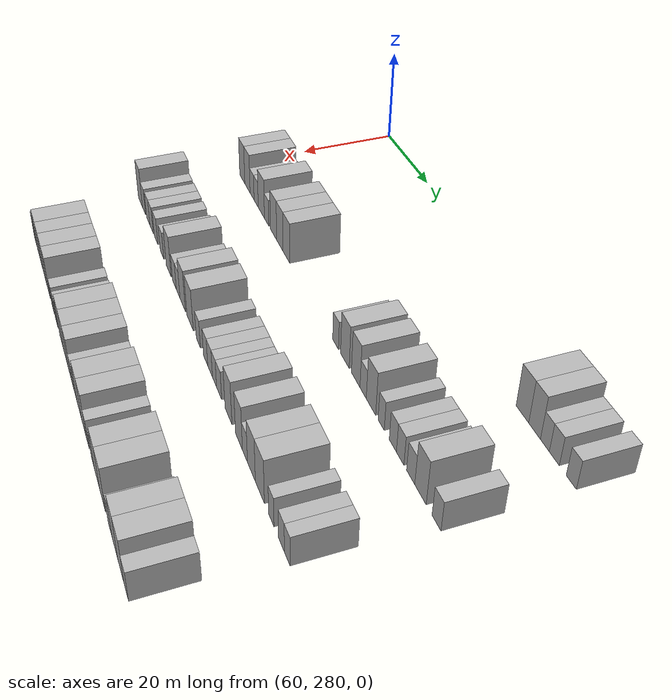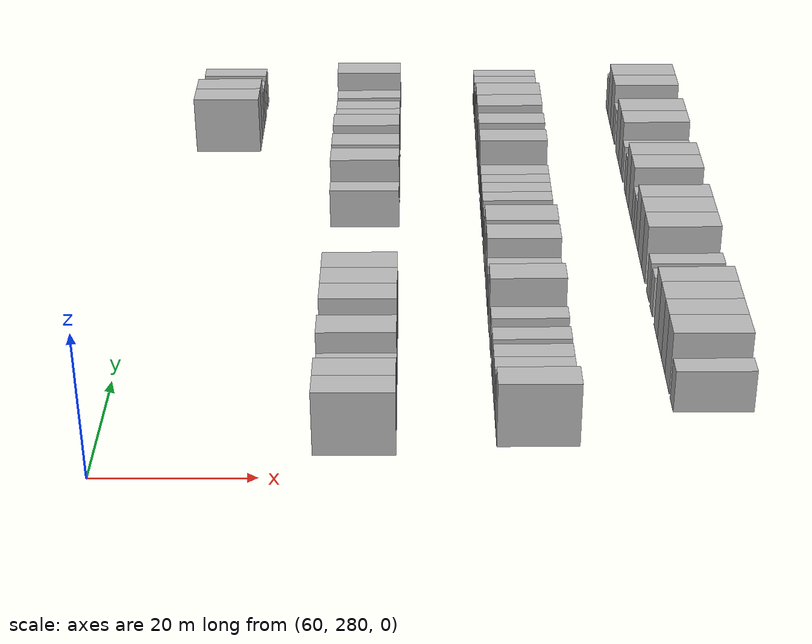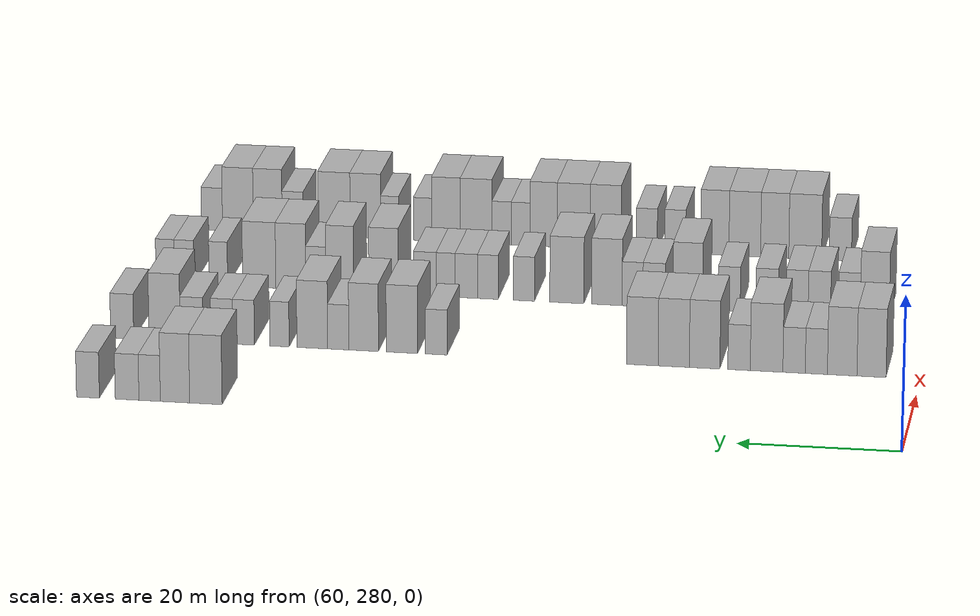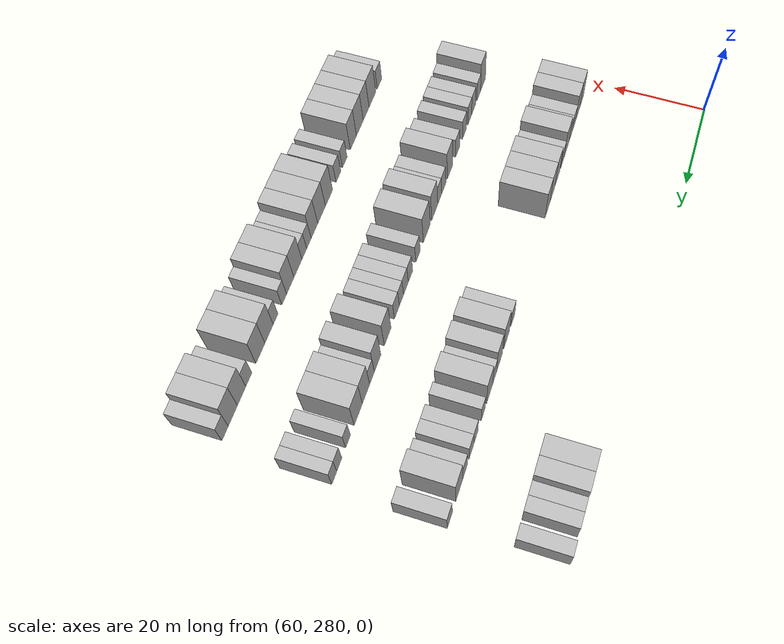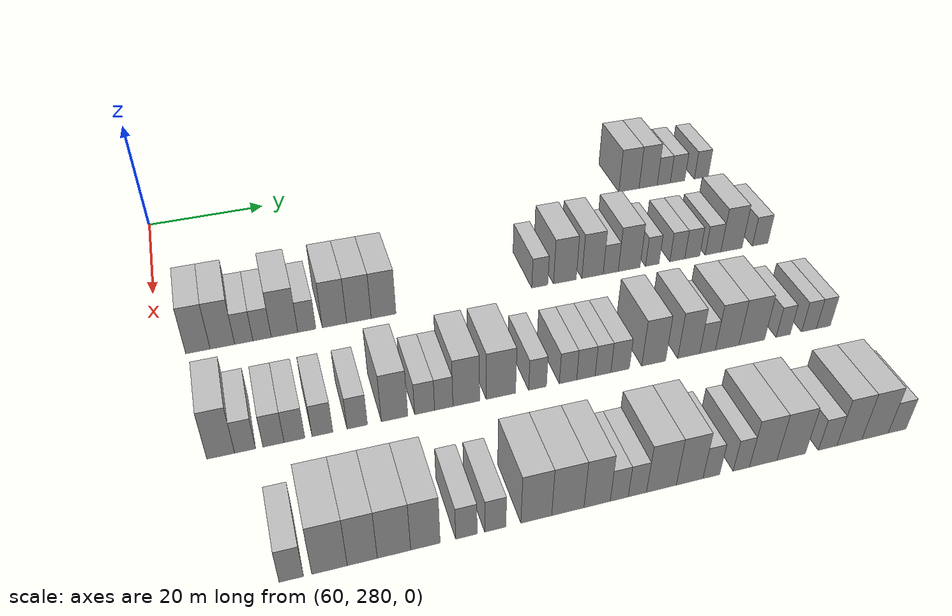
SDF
<sdf version="1.6">
 <world name="default">
  <model name="building_580">
   <static>1</static>
   <pose>69.0000 366.2772 0 0.000000 0.000000 0.000000</pose>
   <link name="link">
    <pose>0 0 4.50 0 0 0</pose>
    <collision name="collision"><geometry><box><size>10.0000 4.0760 9.0000</size></box></geometry></collision>
    <visual name="visual">
     <cast_shadows>0</cast_shadows>
     <geometry><box><size>10.0000 4.0760 9.0000</size></box></geometry>
     <material>
      <script>
       <uri>model://HANNAS_wall/materials/scripts</uri>
       <uri>model://HANNAS_wall/materials/textures</uri>
       <name>vrc/HANNAS_wall</name>
      </script>
     </material>
    </visual>
   </link>
  </model>
  <model name="building_581">
   <static>1</static>
   <pose>69.0000 370.1587 0 0.000000 0.000000 0.000000</pose>
   <link name="link">
    <pose>0 0 4.50 0 0 0</pose>
    <collision name="collision"><geometry><box><size>10.0000 3.6870 9.0000</size></box></geometry></collision>
    <visual name="visual">
     <cast_shadows>0</cast_shadows>
     <geometry><box><size>10.0000 3.6870 9.0000</size></box></geometry>
     <material>
      <script>
       <uri>model://HANNAS_wall/materials/scripts</uri>
       <uri>model://HANNAS_wall/materials/textures</uri>
       <name>vrc/HANNAS_wall</name>
      </script>
     </material>
    </visual>
   </link>
  </model>
  <model name="building_582">
   <static>1</static>
   <pose>69.0000 373.3470 0 0.000000 0.000000 0.000000</pose>
   <link name="link">
    <pose>0 0 3.00 0 0 0</pose>
    <collision name="collision"><geometry><box><size>10.0000 2.6898 6.0000</size></box></geometry></collision>
    <visual name="visual">
     <cast_shadows>0</cast_shadows>
     <geometry><box><size>10.0000 2.6898 6.0000</size></box></geometry>
     <material>
      <script>
       <uri>model://HANNAS_wall/materials/scripts</uri>
       <uri>model://HANNAS_wall/materials/textures</uri>
       <name>vrc/HANNAS_wall</name>
      </script>
     </material>
    </visual>
   </link>
  </model>
  <model name="building_583">
   <static>1</static>
   <pose>69.0000 376.1825 0 0.000000 0.000000 0.000000</pose>
   <link name="link">
    <pose>0 0 3.00 0 0 0</pose>
    <collision name="collision"><geometry><box><size>10.0000 2.9811 6.0000</size></box></geometry></collision>
    <visual name="visual">
     <cast_shadows>0</cast_shadows>
     <geometry><box><size>10.0000 2.9811 6.0000</size></box></geometry>
     <material>
      <script>
       <uri>model://HANNAS_wall/materials/scripts</uri>
       <uri>model://HANNAS_wall/materials/textures</uri>
       <name>vrc/HANNAS_wall</name>
      </script>
     </material>
    </visual>
   </link>
  </model>
  <model name="building_584">
   <static>1</static>
   <pose>69.0000 381.1152 0 0.000000 0.000000 0.000000</pose>
   <link name="link">
    <pose>0 0 3.00 0 0 0</pose>
    <collision name="collision"><geometry><box><size>10.0000 2.8843 6.0000</size></box></geometry></collision>
    <visual name="visual">
     <cast_shadows>0</cast_shadows>
     <geometry><box><size>10.0000 2.8843 6.0000</size></box></geometry>
     <material>
      <script>
       <uri>model://HANNAS_wall/materials/scripts</uri>
       <uri>model://HANNAS_wall/materials/textures</uri>
       <name>vrc/HANNAS_wall</name>
      </script>
     </material>
    </visual>
   </link>
  </model>
  <model name="building_750">
   <static>1</static>
   <pose>91.0000 286.1220 0 0.000000 0.000000 0.000000</pose>
   <link name="link">
    <pose>0 0 4.50 0 0 0</pose>
    <collision name="collision"><geometry><box><size>10.0000 3.6414 9.0000</size></box></geometry></collision>
    <visual name="visual">
     <cast_shadows>0</cast_shadows>
     <geometry><box><size>10.0000 3.6414 9.0000</size></box></geometry>
     <material>
      <script>
       <uri>model://HANNAS_wall/materials/scripts</uri>
       <uri>model://HANNAS_wall/materials/textures</uri>
       <name>vrc/HANNAS_wall</name>
      </script>
     </material>
    </visual>
   </link>
  </model>
  <model name="building_751">
   <static>1</static>
   <pose>91.0000 289.7912 0 0.000000 0.000000 0.000000</pose>
   <link name="link">
    <pose>0 0 4.50 0 0 0</pose>
    <collision name="collision"><geometry><box><size>10.0000 3.6968 9.0000</size></box></geometry></collision>
    <visual name="visual">
     <cast_shadows>0</cast_shadows>
     <geometry><box><size>10.0000 3.6968 9.0000</size></box></geometry>
     <material>
      <script>
       <uri>model://HANNAS_wall/materials/scripts</uri>
       <uri>model://HANNAS_wall/materials/textures</uri>
       <name>vrc/HANNAS_wall</name>
      </script>
     </material>
    </visual>
   </link>
  </model>
  <model name="building_752">
   <static>1</static>
   <pose>91.0000 293.0280 0 0.000000 0.000000 0.000000</pose>
   <link name="link">
    <pose>0 0 3.00 0 0 0</pose>
    <collision name="collision"><geometry><box><size>10.0000 2.7768 6.0000</size></box></geometry></collision>
    <visual name="visual">
     <cast_shadows>0</cast_shadows>
     <geometry><box><size>10.0000 2.7768 6.0000</size></box></geometry>
     <material>
      <script>
       <uri>model://HANNAS_wall/materials/scripts</uri>
       <uri>model://HANNAS_wall/materials/textures</uri>
       <name>vrc/HANNAS_wall</name>
      </script>
     </material>
    </visual>
   </link>
  </model>
  <model name="building_753">
   <static>1</static>
   <pose>91.0000 295.8197 0 0.000000 0.000000 0.000000</pose>
   <link name="link">
    <pose>0 0 3.00 0 0 0</pose>
    <collision name="collision"><geometry><box><size>10.0000 2.8067 6.0000</size></box></geometry></collision>
    <visual name="visual">
     <cast_shadows>0</cast_shadows>
     <geometry><box><size>10.0000 2.8067 6.0000</size></box></geometry>
     <material>
      <script>
       <uri>model://HANNAS_wall/materials/scripts</uri>
       <uri>model://HANNAS_wall/materials/textures</uri>
       <name>vrc/HANNAS_wall</name>
      </script>
     </material>
    </visual>
   </link>
  </model>
  <model name="building_754">
   <static>1</static>
   <pose>91.0000 299.2726 0 0.000000 0.000000 0.000000</pose>
   <link name="link">
    <pose>0 0 4.50 0 0 0</pose>
    <collision name="collision"><geometry><box><size>10.0000 4.0991 9.0000</size></box></geometry></collision>
    <visual name="visual">
     <cast_shadows>0</cast_shadows>
     <geometry><box><size>10.0000 4.0991 9.0000</size></box></geometry>
     <material>
      <script>
       <uri>model://HANNAS_wall/materials/scripts</uri>
       <uri>model://HANNAS_wall/materials/textures</uri>
       <name>vrc/HANNAS_wall</name>
      </script>
     </material>
    </visual>
   </link>
  </model>
  <model name="building_755">
   <static>1</static>
   <pose>91.0000 302.7346 0 0.000000 0.000000 0.000000</pose>
   <link name="link">
    <pose>0 0 3.00 0 0 0</pose>
    <collision name="collision"><geometry><box><size>10.0000 2.8249 6.0000</size></box></geometry></collision>
    <visual name="visual">
     <cast_shadows>0</cast_shadows>
     <geometry><box><size>10.0000 2.8249 6.0000</size></box></geometry>
     <material>
      <script>
       <uri>model://HANNAS_wall/materials/scripts</uri>
       <uri>model://HANNAS_wall/materials/textures</uri>
       <name>vrc/HANNAS_wall</name>
      </script>
     </material>
    </visual>
   </link>
  </model>
  <model name="building_756">
   <static>1</static>
   <pose>91.0000 307.0704 0 0.000000 0.000000 0.000000</pose>
   <link name="link">
    <pose>0 0 4.50 0 0 0</pose>
    <collision name="collision"><geometry><box><size>10.0000 3.8467 9.0000</size></box></geometry></collision>
    <visual name="visual">
     <cast_shadows>0</cast_shadows>
     <geometry><box><size>10.0000 3.8467 9.0000</size></box></geometry>
     <material>
      <script>
       <uri>model://HANNAS_wall/materials/scripts</uri>
       <uri>model://HANNAS_wall/materials/textures</uri>
       <name>vrc/HANNAS_wall</name>
      </script>
     </material>
    </visual>
   </link>
  </model>
  <model name="building_757">
   <static>1</static>
   <pose>91.0000 310.9632 0 0.000000 0.000000 0.000000</pose>
   <link name="link">
    <pose>0 0 4.50 0 0 0</pose>
    <collision name="collision"><geometry><box><size>10.0000 3.9389 9.0000</size></box></geometry></collision>
    <visual name="visual">
     <cast_shadows>0</cast_shadows>
     <geometry><box><size>10.0000 3.9389 9.0000</size></box></geometry>
     <material>
      <script>
       <uri>model://HANNAS_wall/materials/scripts</uri>
       <uri>model://HANNAS_wall/materials/textures</uri>
       <name>vrc/HANNAS_wall</name>
      </script>
     </material>
    </visual>
   </link>
  </model>
  <model name="building_758">
   <static>1</static>
   <pose>91.0000 314.9279 0 0.000000 0.000000 0.000000</pose>
   <link name="link">
    <pose>0 0 4.50 0 0 0</pose>
    <collision name="collision"><geometry><box><size>10.0000 3.9906 9.0000</size></box></geometry></collision>
    <visual name="visual">
     <cast_shadows>0</cast_shadows>
     <geometry><box><size>10.0000 3.9906 9.0000</size></box></geometry>
     <material>
      <script>
       <uri>model://HANNAS_wall/materials/scripts</uri>
       <uri>model://HANNAS_wall/materials/textures</uri>
       <name>vrc/HANNAS_wall</name>
      </script>
     </material>
    </visual>
   </link>
  </model>
  <model name="building_759">
   <static>1</static>
   <pose>91.0000 341.0937 0 0.000000 0.000000 0.000000</pose>
   <link name="link">
    <pose>0 0 3.00 0 0 0</pose>
    <collision name="collision"><geometry><box><size>10.0000 2.7803 6.0000</size></box></geometry></collision>
    <visual name="visual">
     <cast_shadows>0</cast_shadows>
     <geometry><box><size>10.0000 2.7803 6.0000</size></box></geometry>
     <material>
      <script>
       <uri>model://HANNAS_wall/materials/scripts</uri>
       <uri>model://HANNAS_wall/materials/textures</uri>
       <name>vrc/HANNAS_wall</name>
      </script>
     </material>
    </visual>
   </link>
  </model>
  <model name="building_760">
   <static>1</static>
   <pose>91.0000 345.4818 0 0.000000 0.000000 0.000000</pose>
   <link name="link">
    <pose>0 0 4.50 0 0 0</pose>
    <collision name="collision"><geometry><box><size>10.0000 3.9960 9.0000</size></box></geometry></collision>
    <visual name="visual">
     <cast_shadows>0</cast_shadows>
     <geometry><box><size>10.0000 3.9960 9.0000</size></box></geometry>
     <material>
      <script>
       <uri>model://HANNAS_wall/materials/scripts</uri>
       <uri>model://HANNAS_wall/materials/textures</uri>
       <name>vrc/HANNAS_wall</name>
      </script>
     </material>
    </visual>
   </link>
  </model>
  <model name="building_761">
   <static>1</static>
   <pose>91.0000 350.3775 0 0.000000 0.000000 0.000000</pose>
   <link name="link">
    <pose>0 0 4.50 0 0 0</pose>
    <collision name="collision"><geometry><box><size>10.0000 3.7954 9.0000</size></box></geometry></collision>
    <visual name="visual">
     <cast_shadows>0</cast_shadows>
     <geometry><box><size>10.0000 3.7954 9.0000</size></box></geometry>
     <material>
      <script>
       <uri>model://HANNAS_wall/materials/scripts</uri>
       <uri>model://HANNAS_wall/materials/textures</uri>
       <name>vrc/HANNAS_wall</name>
      </script>
     </material>
    </visual>
   </link>
  </model>
  <model name="building_762">
   <static>1</static>
   <pose>91.0000 353.6324 0 0.000000 0.000000 0.000000</pose>
   <link name="link">
    <pose>0 0 3.00 0 0 0</pose>
    <collision name="collision"><geometry><box><size>10.0000 2.7145 6.0000</size></box></geometry></collision>
    <visual name="visual">
     <cast_shadows>0</cast_shadows>
     <geometry><box><size>10.0000 2.7145 6.0000</size></box></geometry>
     <material>
      <script>
       <uri>model://HANNAS_wall/materials/scripts</uri>
       <uri>model://HANNAS_wall/materials/textures</uri>
       <name>vrc/HANNAS_wall</name>
      </script>
     </material>
    </visual>
   </link>
  </model>
  <model name="building_763">
   <static>1</static>
   <pose>91.0000 356.9633 0 0.000000 0.000000 0.000000</pose>
   <link name="link">
    <pose>0 0 4.50 0 0 0</pose>
    <collision name="collision"><geometry><box><size>10.0000 3.9473 9.0000</size></box></geometry></collision>
    <visual name="visual">
     <cast_shadows>0</cast_shadows>
     <geometry><box><size>10.0000 3.9473 9.0000</size></box></geometry>
     <material>
      <script>
       <uri>model://HANNAS_wall/materials/scripts</uri>
       <uri>model://HANNAS_wall/materials/textures</uri>
       <name>vrc/HANNAS_wall</name>
      </script>
     </material>
    </visual>
   </link>
  </model>
  <model name="building_764">
   <static>1</static>
   <pose>91.0000 361.1721 0 0.000000 0.000000 0.000000</pose>
   <link name="link">
    <pose>0 0 3.00 0 0 0</pose>
    <collision name="collision"><geometry><box><size>10.0000 2.4701 6.0000</size></box></geometry></collision>
    <visual name="visual">
     <cast_shadows>0</cast_shadows>
     <geometry><box><size>10.0000 2.4701 6.0000</size></box></geometry>
     <material>
      <script>
       <uri>model://HANNAS_wall/materials/scripts</uri>
       <uri>model://HANNAS_wall/materials/textures</uri>
       <name>vrc/HANNAS_wall</name>
      </script>
     </material>
    </visual>
   </link>
  </model>
  <model name="building_765">
   <static>1</static>
   <pose>91.0000 365.7931 0 0.000000 0.000000 0.000000</pose>
   <link name="link">
    <pose>0 0 3.00 0 0 0</pose>
    <collision name="collision"><geometry><box><size>10.0000 2.7720 6.0000</size></box></geometry></collision>
    <visual name="visual">
     <cast_shadows>0</cast_shadows>
     <geometry><box><size>10.0000 2.7720 6.0000</size></box></geometry>
     <material>
      <script>
       <uri>model://HANNAS_wall/materials/scripts</uri>
       <uri>model://HANNAS_wall/materials/textures</uri>
       <name>vrc/HANNAS_wall</name>
      </script>
     </material>
    </visual>
   </link>
  </model>
  <model name="building_766">
   <static>1</static>
   <pose>91.0000 368.5894 0 0.000000 0.000000 0.000000</pose>
   <link name="link">
    <pose>0 0 3.00 0 0 0</pose>
    <collision name="collision"><geometry><box><size>10.0000 2.8205 6.0000</size></box></geometry></collision>
    <visual name="visual">
     <cast_shadows>0</cast_shadows>
     <geometry><box><size>10.0000 2.8205 6.0000</size></box></geometry>
     <material>
      <script>
       <uri>model://HANNAS_wall/materials/scripts</uri>
       <uri>model://HANNAS_wall/materials/textures</uri>
       <name>vrc/HANNAS_wall</name>
      </script>
     </material>
    </visual>
   </link>
  </model>
  <model name="building_767">
   <static>1</static>
   <pose>91.0000 372.4851 0 0.000000 0.000000 0.000000</pose>
   <link name="link">
    <pose>0 0 3.00 0 0 0</pose>
    <collision name="collision"><geometry><box><size>10.0000 2.9709 6.0000</size></box></geometry></collision>
    <visual name="visual">
     <cast_shadows>0</cast_shadows>
     <geometry><box><size>10.0000 2.9709 6.0000</size></box></geometry>
     <material>
      <script>
       <uri>model://HANNAS_wall/materials/scripts</uri>
       <uri>model://HANNAS_wall/materials/textures</uri>
       <name>vrc/HANNAS_wall</name>
      </script>
     </material>
    </visual>
   </link>
  </model>
  <model name="building_768">
   <static>1</static>
   <pose>91.0000 375.9831 0 0.000000 0.000000 0.000000</pose>
   <link name="link">
    <pose>0 0 4.50 0 0 0</pose>
    <collision name="collision"><geometry><box><size>10.0000 4.0251 9.0000</size></box></geometry></collision>
    <visual name="visual">
     <cast_shadows>0</cast_shadows>
     <geometry><box><size>10.0000 4.0251 9.0000</size></box></geometry>
     <material>
      <script>
       <uri>model://HANNAS_wall/materials/scripts</uri>
       <uri>model://HANNAS_wall/materials/textures</uri>
       <name>vrc/HANNAS_wall</name>
      </script>
     </material>
    </visual>
   </link>
  </model>
  <model name="building_769">
   <static>1</static>
   <pose>91.0000 381.4887 0 0.000000 0.000000 0.000000</pose>
   <link name="link">
    <pose>0 0 3.00 0 0 0</pose>
    <collision name="collision"><geometry><box><size>10.0000 2.9861 6.0000</size></box></geometry></collision>
    <visual name="visual">
     <cast_shadows>0</cast_shadows>
     <geometry><box><size>10.0000 2.9861 6.0000</size></box></geometry>
     <material>
      <script>
       <uri>model://HANNAS_wall/materials/scripts</uri>
       <uri>model://HANNAS_wall/materials/textures</uri>
       <name>vrc/HANNAS_wall</name>
      </script>
     </material>
    </visual>
   </link>
  </model>
  <model name="building_928">
   <static>1</static>
   <pose>113.0000 287.7310 0 0.000000 0.000000 0.000000</pose>
   <link name="link">
    <pose>0 0 4.50 0 0 0</pose>
    <collision name="collision"><geometry><box><size>10.0000 3.7162 9.0000</size></box></geometry></collision>
    <visual name="visual">
     <cast_shadows>0</cast_shadows>
     <geometry><box><size>10.0000 3.7162 9.0000</size></box></geometry>
     <material>
      <script>
       <uri>model://HANNAS_wall/materials/scripts</uri>
       <uri>model://HANNAS_wall/materials/textures</uri>
       <name>vrc/HANNAS_wall</name>
      </script>
     </material>
    </visual>
   </link>
  </model>
  <model name="building_929">
   <static>1</static>
   <pose>113.0000 291.0028 0 0.000000 0.000000 0.000000</pose>
   <link name="link">
    <pose>0 0 3.00 0 0 0</pose>
    <collision name="collision"><geometry><box><size>10.0000 2.8272 6.0000</size></box></geometry></collision>
    <visual name="visual">
     <cast_shadows>0</cast_shadows>
     <geometry><box><size>10.0000 2.8272 6.0000</size></box></geometry>
     <material>
      <script>
       <uri>model://HANNAS_wall/materials/scripts</uri>
       <uri>model://HANNAS_wall/materials/textures</uri>
       <name>vrc/HANNAS_wall</name>
      </script>
     </material>
    </visual>
   </link>
  </model>
  <model name="building_930">
   <static>1</static>
   <pose>113.0000 294.8592 0 0.000000 0.000000 0.000000</pose>
   <link name="link">
    <pose>0 0 3.00 0 0 0</pose>
    <collision name="collision"><geometry><box><size>10.0000 2.8858 6.0000</size></box></geometry></collision>
    <visual name="visual">
     <cast_shadows>0</cast_shadows>
     <geometry><box><size>10.0000 2.8858 6.0000</size></box></geometry>
     <material>
      <script>
       <uri>model://HANNAS_wall/materials/scripts</uri>
       <uri>model://HANNAS_wall/materials/textures</uri>
       <name>vrc/HANNAS_wall</name>
      </script>
     </material>
    </visual>
   </link>
  </model>
  <model name="building_931">
   <static>1</static>
   <pose>113.0000 297.7384 0 0.000000 0.000000 0.000000</pose>
   <link name="link">
    <pose>0 0 3.00 0 0 0</pose>
    <collision name="collision"><geometry><box><size>10.0000 2.8725 6.0000</size></box></geometry></collision>
    <visual name="visual">
     <cast_shadows>0</cast_shadows>
     <geometry><box><size>10.0000 2.8725 6.0000</size></box></geometry>
     <material>
      <script>
       <uri>model://HANNAS_wall/materials/scripts</uri>
       <uri>model://HANNAS_wall/materials/textures</uri>
       <name>vrc/HANNAS_wall</name>
      </script>
     </material>
    </visual>
   </link>
  </model>
  <model name="building_932">
   <static>1</static>
   <pose>113.0000 301.6266 0 0.000000 0.000000 0.000000</pose>
   <link name="link">
    <pose>0 0 3.00 0 0 0</pose>
    <collision name="collision"><geometry><box><size>10.0000 2.9038 6.0000</size></box></geometry></collision>
    <visual name="visual">
     <cast_shadows>0</cast_shadows>
     <geometry><box><size>10.0000 2.9038 6.0000</size></box></geometry>
     <material>
      <script>
       <uri>model://HANNAS_wall/materials/scripts</uri>
       <uri>model://HANNAS_wall/materials/textures</uri>
       <name>vrc/HANNAS_wall</name>
      </script>
     </material>
    </visual>
   </link>
  </model>
  <model name="building_933">
   <static>1</static>
   <pose>113.0000 306.5180 0 0.000000 0.000000 0.000000</pose>
   <link name="link">
    <pose>0 0 3.00 0 0 0</pose>
    <collision name="collision"><geometry><box><size>10.0000 2.8791 6.0000</size></box></geometry></collision>
    <visual name="visual">
     <cast_shadows>0</cast_shadows>
     <geometry><box><size>10.0000 2.8791 6.0000</size></box></geometry>
     <material>
      <script>
       <uri>model://HANNAS_wall/materials/scripts</uri>
       <uri>model://HANNAS_wall/materials/textures</uri>
       <name>vrc/HANNAS_wall</name>
      </script>
     </material>
    </visual>
   </link>
  </model>
  <model name="building_934">
   <static>1</static>
   <pose>113.0000 311.8650 0 0.000000 0.000000 0.000000</pose>
   <link name="link">
    <pose>0 0 4.50 0 0 0</pose>
    <collision name="collision"><geometry><box><size>10.0000 3.8147 9.0000</size></box></geometry></collision>
    <visual name="visual">
     <cast_shadows>0</cast_shadows>
     <geometry><box><size>10.0000 3.8147 9.0000</size></box></geometry>
     <material>
      <script>
       <uri>model://HANNAS_wall/materials/scripts</uri>
       <uri>model://HANNAS_wall/materials/textures</uri>
       <name>vrc/HANNAS_wall</name>
      </script>
     </material>
    </visual>
   </link>
  </model>
  <model name="building_935">
   <static>1</static>
   <pose>113.0000 316.2283 0 0.000000 0.000000 0.000000</pose>
   <link name="link">
    <pose>0 0 3.00 0 0 0</pose>
    <collision name="collision"><geometry><box><size>10.0000 2.9121 6.0000</size></box></geometry></collision>
    <visual name="visual">
     <cast_shadows>0</cast_shadows>
     <geometry><box><size>10.0000 2.9121 6.0000</size></box></geometry>
     <material>
      <script>
       <uri>model://HANNAS_wall/materials/scripts</uri>
       <uri>model://HANNAS_wall/materials/textures</uri>
       <name>vrc/HANNAS_wall</name>
      </script>
     </material>
    </visual>
   </link>
  </model>
  <model name="building_936">
   <static>1</static>
   <pose>113.0000 319.0325 0 0.000000 0.000000 0.000000</pose>
   <link name="link">
    <pose>0 0 3.00 0 0 0</pose>
    <collision name="collision"><geometry><box><size>10.0000 2.6962 6.0000</size></box></geometry></collision>
    <visual name="visual">
     <cast_shadows>0</cast_shadows>
     <geometry><box><size>10.0000 2.6962 6.0000</size></box></geometry>
     <material>
      <script>
       <uri>model://HANNAS_wall/materials/scripts</uri>
       <uri>model://HANNAS_wall/materials/textures</uri>
       <name>vrc/HANNAS_wall</name>
      </script>
     </material>
    </visual>
   </link>
  </model>
  <model name="building_937">
   <static>1</static>
   <pose>113.0000 322.3652 0 0.000000 0.000000 0.000000</pose>
   <link name="link">
    <pose>0 0 4.50 0 0 0</pose>
    <collision name="collision"><geometry><box><size>10.0000 3.9692 9.0000</size></box></geometry></collision>
    <visual name="visual">
     <cast_shadows>0</cast_shadows>
     <geometry><box><size>10.0000 3.9692 9.0000</size></box></geometry>
     <material>
      <script>
       <uri>model://HANNAS_wall/materials/scripts</uri>
       <uri>model://HANNAS_wall/materials/textures</uri>
       <name>vrc/HANNAS_wall</name>
      </script>
     </material>
    </visual>
   </link>
  </model>
  <model name="building_938">
   <static>1</static>
   <pose>113.0000 327.5741 0 0.000000 0.000000 0.000000</pose>
   <link name="link">
    <pose>0 0 4.50 0 0 0</pose>
    <collision name="collision"><geometry><box><size>10.0000 4.4486 9.0000</size></box></geometry></collision>
    <visual name="visual">
     <cast_shadows>0</cast_shadows>
     <geometry><box><size>10.0000 4.4486 9.0000</size></box></geometry>
     <material>
      <script>
       <uri>model://HANNAS_wall/materials/scripts</uri>
       <uri>model://HANNAS_wall/materials/textures</uri>
       <name>vrc/HANNAS_wall</name>
      </script>
     </material>
    </visual>
   </link>
  </model>
  <model name="building_939">
   <static>1</static>
   <pose>113.0000 333.1717 0 0.000000 0.000000 0.000000</pose>
   <link name="link">
    <pose>0 0 3.00 0 0 0</pose>
    <collision name="collision"><geometry><box><size>10.0000 2.7464 6.0000</size></box></geometry></collision>
    <visual name="visual">
     <cast_shadows>0</cast_shadows>
     <geometry><box><size>10.0000 2.7464 6.0000</size></box></geometry>
     <material>
      <script>
       <uri>model://HANNAS_wall/materials/scripts</uri>
       <uri>model://HANNAS_wall/materials/textures</uri>
       <name>vrc/HANNAS_wall</name>
      </script>
     </material>
    </visual>
   </link>
  </model>
  <model name="building_940">
   <static>1</static>
   <pose>113.0000 337.9010 0 0.000000 0.000000 0.000000</pose>
   <link name="link">
    <pose>0 0 3.00 0 0 0</pose>
    <collision name="collision"><geometry><box><size>10.0000 2.7122 6.0000</size></box></geometry></collision>
    <visual name="visual">
     <cast_shadows>0</cast_shadows>
     <geometry><box><size>10.0000 2.7122 6.0000</size></box></geometry>
     <material>
      <script>
       <uri>model://HANNAS_wall/materials/scripts</uri>
       <uri>model://HANNAS_wall/materials/textures</uri>
       <name>vrc/HANNAS_wall</name>
      </script>
     </material>
    </visual>
   </link>
  </model>
  <model name="building_941">
   <static>1</static>
   <pose>113.0000 340.7173 0 0.000000 0.000000 0.000000</pose>
   <link name="link">
    <pose>0 0 3.00 0 0 0</pose>
    <collision name="collision"><geometry><box><size>10.0000 2.9204 6.0000</size></box></geometry></collision>
    <visual name="visual">
     <cast_shadows>0</cast_shadows>
     <geometry><box><size>10.0000 2.9204 6.0000</size></box></geometry>
     <material>
      <script>
       <uri>model://HANNAS_wall/materials/scripts</uri>
       <uri>model://HANNAS_wall/materials/textures</uri>
       <name>vrc/HANNAS_wall</name>
      </script>
     </material>
    </visual>
   </link>
  </model>
  <model name="building_942">
   <static>1</static>
   <pose>113.0000 343.4243 0 0.000000 0.000000 0.000000</pose>
   <link name="link">
    <pose>0 0 3.00 0 0 0</pose>
    <collision name="collision"><geometry><box><size>10.0000 2.4936 6.0000</size></box></geometry></collision>
    <visual name="visual">
     <cast_shadows>0</cast_shadows>
     <geometry><box><size>10.0000 2.4936 6.0000</size></box></geometry>
     <material>
      <script>
       <uri>model://HANNAS_wall/materials/scripts</uri>
       <uri>model://HANNAS_wall/materials/textures</uri>
       <name>vrc/HANNAS_wall</name>
      </script>
     </material>
    </visual>
   </link>
  </model>
  <model name="building_943">
   <static>1</static>
   <pose>113.0000 346.1548 0 0.000000 0.000000 0.000000</pose>
   <link name="link">
    <pose>0 0 3.00 0 0 0</pose>
    <collision name="collision"><geometry><box><size>10.0000 2.9674 6.0000</size></box></geometry></collision>
    <visual name="visual">
     <cast_shadows>0</cast_shadows>
     <geometry><box><size>10.0000 2.9674 6.0000</size></box></geometry>
     <material>
      <script>
       <uri>model://HANNAS_wall/materials/scripts</uri>
       <uri>model://HANNAS_wall/materials/textures</uri>
       <name>vrc/HANNAS_wall</name>
      </script>
     </material>
    </visual>
   </link>
  </model>
  <model name="building_944">
   <static>1</static>
   <pose>113.0000 351.5796 0 0.000000 0.000000 0.000000</pose>
   <link name="link">
    <pose>0 0 4.50 0 0 0</pose>
    <collision name="collision"><geometry><box><size>10.0000 3.8823 9.0000</size></box></geometry></collision>
    <visual name="visual">
     <cast_shadows>0</cast_shadows>
     <geometry><box><size>10.0000 3.8823 9.0000</size></box></geometry>
     <material>
      <script>
       <uri>model://HANNAS_wall/materials/scripts</uri>
       <uri>model://HANNAS_wall/materials/textures</uri>
       <name>vrc/HANNAS_wall</name>
      </script>
     </material>
    </visual>
   </link>
  </model>
  <model name="building_945">
   <static>1</static>
   <pose>113.0000 357.3502 0 0.000000 0.000000 0.000000</pose>
   <link name="link">
    <pose>0 0 4.50 0 0 0</pose>
    <collision name="collision"><geometry><box><size>10.0000 3.6589 9.0000</size></box></geometry></collision>
    <visual name="visual">
     <cast_shadows>0</cast_shadows>
     <geometry><box><size>10.0000 3.6589 9.0000</size></box></geometry>
     <material>
      <script>
       <uri>model://HANNAS_wall/materials/scripts</uri>
       <uri>model://HANNAS_wall/materials/textures</uri>
       <name>vrc/HANNAS_wall</name>
      </script>
     </material>
    </visual>
   </link>
  </model>
  <model name="building_946">
   <static>1</static>
   <pose>113.0000 360.4922 0 0.000000 0.000000 0.000000</pose>
   <link name="link">
    <pose>0 0 3.00 0 0 0</pose>
    <collision name="collision"><geometry><box><size>10.0000 2.6251 6.0000</size></box></geometry></collision>
    <visual name="visual">
     <cast_shadows>0</cast_shadows>
     <geometry><box><size>10.0000 2.6251 6.0000</size></box></geometry>
     <material>
      <script>
       <uri>model://HANNAS_wall/materials/scripts</uri>
       <uri>model://HANNAS_wall/materials/textures</uri>
       <name>vrc/HANNAS_wall</name>
      </script>
     </material>
    </visual>
   </link>
  </model>
  <model name="building_947">
   <static>1</static>
   <pose>113.0000 363.7940 0 0.000000 0.000000 0.000000</pose>
   <link name="link">
    <pose>0 0 4.50 0 0 0</pose>
    <collision name="collision"><geometry><box><size>10.0000 3.9786 9.0000</size></box></geometry></collision>
    <visual name="visual">
     <cast_shadows>0</cast_shadows>
     <geometry><box><size>10.0000 3.9786 9.0000</size></box></geometry>
     <material>
      <script>
       <uri>model://HANNAS_wall/materials/scripts</uri>
       <uri>model://HANNAS_wall/materials/textures</uri>
       <name>vrc/HANNAS_wall</name>
      </script>
     </material>
    </visual>
   </link>
  </model>
  <model name="building_948">
   <static>1</static>
   <pose>113.0000 367.9736 0 0.000000 0.000000 0.000000</pose>
   <link name="link">
    <pose>0 0 4.50 0 0 0</pose>
    <collision name="collision"><geometry><box><size>10.0000 4.3806 9.0000</size></box></geometry></collision>
    <visual name="visual">
     <cast_shadows>0</cast_shadows>
     <geometry><box><size>10.0000 4.3806 9.0000</size></box></geometry>
     <material>
      <script>
       <uri>model://HANNAS_wall/materials/scripts</uri>
       <uri>model://HANNAS_wall/materials/textures</uri>
       <name>vrc/HANNAS_wall</name>
      </script>
     </material>
    </visual>
   </link>
  </model>
  <model name="building_949">
   <static>1</static>
   <pose>113.0000 373.3889 0 0.000000 0.000000 0.000000</pose>
   <link name="link">
    <pose>0 0 3.00 0 0 0</pose>
    <collision name="collision"><geometry><box><size>10.0000 2.4499 6.0000</size></box></geometry></collision>
    <visual name="visual">
     <cast_shadows>0</cast_shadows>
     <geometry><box><size>10.0000 2.4499 6.0000</size></box></geometry>
     <material>
      <script>
       <uri>model://HANNAS_wall/materials/scripts</uri>
       <uri>model://HANNAS_wall/materials/textures</uri>
       <name>vrc/HANNAS_wall</name>
      </script>
     </material>
    </visual>
   </link>
  </model>
  <model name="building_950">
   <static>1</static>
   <pose>113.0000 377.9142 0 0.000000 0.000000 0.000000</pose>
   <link name="link">
    <pose>0 0 3.00 0 0 0</pose>
    <collision name="collision"><geometry><box><size>10.0000 2.6008 6.0000</size></box></geometry></collision>
    <visual name="visual">
     <cast_shadows>0</cast_shadows>
     <geometry><box><size>10.0000 2.6008 6.0000</size></box></geometry>
     <material>
      <script>
       <uri>model://HANNAS_wall/materials/scripts</uri>
       <uri>model://HANNAS_wall/materials/textures</uri>
       <name>vrc/HANNAS_wall</name>
      </script>
     </material>
    </visual>
   </link>
  </model>
  <model name="building_951">
   <static>1</static>
   <pose>113.0000 380.4420 0 0.000000 0.000000 0.000000</pose>
   <link name="link">
    <pose>0 0 3.00 0 0 0</pose>
    <collision name="collision"><geometry><box><size>10.0000 2.4546 6.0000</size></box></geometry></collision>
    <visual name="visual">
     <cast_shadows>0</cast_shadows>
     <geometry><box><size>10.0000 2.4546 6.0000</size></box></geometry>
     <material>
      <script>
       <uri>model://HANNAS_wall/materials/scripts</uri>
       <uri>model://HANNAS_wall/materials/textures</uri>
       <name>vrc/HANNAS_wall</name>
      </script>
     </material>
    </visual>
   </link>
  </model>
  <model name="building_1123">
   <static>1</static>
   <pose>135.0000 294.2876 0 0.000000 0.000000 0.000000</pose>
   <link name="link">
    <pose>0 0 3.00 0 0 0</pose>
    <collision name="collision"><geometry><box><size>10.0000 2.9420 6.0000</size></box></geometry></collision>
    <visual name="visual">
     <cast_shadows>0</cast_shadows>
     <geometry><box><size>10.0000 2.9420 6.0000</size></box></geometry>
     <material>
      <script>
       <uri>model://HANNAS_wall/materials/scripts</uri>
       <uri>model://HANNAS_wall/materials/textures</uri>
       <name>vrc/HANNAS_wall</name>
      </script>
     </material>
    </visual>
   </link>
  </model>
  <model name="building_1124">
   <static>1</static>
   <pose>135.0000 298.9319 0 0.000000 0.000000 0.000000</pose>
   <link name="link">
    <pose>0 0 4.50 0 0 0</pose>
    <collision name="collision"><geometry><box><size>10.0000 4.3468 9.0000</size></box></geometry></collision>
    <visual name="visual">
     <cast_shadows>0</cast_shadows>
     <geometry><box><size>10.0000 4.3468 9.0000</size></box></geometry>
     <material>
      <script>
       <uri>model://HANNAS_wall/materials/scripts</uri>
       <uri>model://HANNAS_wall/materials/textures</uri>
       <name>vrc/HANNAS_wall</name>
      </script>
     </material>
    </visual>
   </link>
  </model>
  <model name="building_1125">
   <static>1</static>
   <pose>135.0000 302.9730 0 0.000000 0.000000 0.000000</pose>
   <link name="link">
    <pose>0 0 4.50 0 0 0</pose>
    <collision name="collision"><geometry><box><size>10.0000 3.7353 9.0000</size></box></geometry></collision>
    <visual name="visual">
     <cast_shadows>0</cast_shadows>
     <geometry><box><size>10.0000 3.7353 9.0000</size></box></geometry>
     <material>
      <script>
       <uri>model://HANNAS_wall/materials/scripts</uri>
       <uri>model://HANNAS_wall/materials/textures</uri>
       <name>vrc/HANNAS_wall</name>
      </script>
     </material>
    </visual>
   </link>
  </model>
  <model name="building_1126">
   <static>1</static>
   <pose>135.0000 306.9448 0 0.000000 0.000000 0.000000</pose>
   <link name="link">
    <pose>0 0 4.50 0 0 0</pose>
    <collision name="collision"><geometry><box><size>10.0000 4.2083 9.0000</size></box></geometry></collision>
    <visual name="visual">
     <cast_shadows>0</cast_shadows>
     <geometry><box><size>10.0000 4.2083 9.0000</size></box></geometry>
     <material>
      <script>
       <uri>model://HANNAS_wall/materials/scripts</uri>
       <uri>model://HANNAS_wall/materials/textures</uri>
       <name>vrc/HANNAS_wall</name>
      </script>
     </material>
    </visual>
   </link>
  </model>
  <model name="building_1127">
   <static>1</static>
   <pose>135.0000 310.9334 0 0.000000 0.000000 0.000000</pose>
   <link name="link">
    <pose>0 0 4.50 0 0 0</pose>
    <collision name="collision"><geometry><box><size>10.0000 3.7689 9.0000</size></box></geometry></collision>
    <visual name="visual">
     <cast_shadows>0</cast_shadows>
     <geometry><box><size>10.0000 3.7689 9.0000</size></box></geometry>
     <material>
      <script>
       <uri>model://HANNAS_wall/materials/scripts</uri>
       <uri>model://HANNAS_wall/materials/textures</uri>
       <name>vrc/HANNAS_wall</name>
      </script>
     </material>
    </visual>
   </link>
  </model>
  <model name="building_1128">
   <static>1</static>
   <pose>135.0000 316.2091 0 0.000000 0.000000 0.000000</pose>
   <link name="link">
    <pose>0 0 3.00 0 0 0</pose>
    <collision name="collision"><geometry><box><size>10.0000 2.7824 6.0000</size></box></geometry></collision>
    <visual name="visual">
     <cast_shadows>0</cast_shadows>
     <geometry><box><size>10.0000 2.7824 6.0000</size></box></geometry>
     <material>
      <script>
       <uri>model://HANNAS_wall/materials/scripts</uri>
       <uri>model://HANNAS_wall/materials/textures</uri>
       <name>vrc/HANNAS_wall</name>
      </script>
     </material>
    </visual>
   </link>
  </model>
  <model name="building_1129">
   <static>1</static>
   <pose>135.0000 320.0041 0 0.000000 0.000000 0.000000</pose>
   <link name="link">
    <pose>0 0 3.00 0 0 0</pose>
    <collision name="collision"><geometry><box><size>10.0000 2.8078 6.0000</size></box></geometry></collision>
    <visual name="visual">
     <cast_shadows>0</cast_shadows>
     <geometry><box><size>10.0000 2.8078 6.0000</size></box></geometry>
     <material>
      <script>
       <uri>model://HANNAS_wall/materials/scripts</uri>
       <uri>model://HANNAS_wall/materials/textures</uri>
       <name>vrc/HANNAS_wall</name>
      </script>
     </material>
    </visual>
   </link>
  </model>
  <model name="building_1130">
   <static>1</static>
   <pose>135.0000 325.4838 0 0.000000 0.000000 0.000000</pose>
   <link name="link">
    <pose>0 0 4.50 0 0 0</pose>
    <collision name="collision"><geometry><box><size>10.0000 4.1515 9.0000</size></box></geometry></collision>
    <visual name="visual">
     <cast_shadows>0</cast_shadows>
     <geometry><box><size>10.0000 4.1515 9.0000</size></box></geometry>
     <material>
      <script>
       <uri>model://HANNAS_wall/materials/scripts</uri>
       <uri>model://HANNAS_wall/materials/textures</uri>
       <name>vrc/HANNAS_wall</name>
      </script>
     </material>
    </visual>
   </link>
  </model>
  <model name="building_1131">
   <static>1</static>
   <pose>135.0000 329.7630 0 0.000000 0.000000 0.000000</pose>
   <link name="link">
    <pose>0 0 4.50 0 0 0</pose>
    <collision name="collision"><geometry><box><size>10.0000 4.4070 9.0000</size></box></geometry></collision>
    <visual name="visual">
     <cast_shadows>0</cast_shadows>
     <geometry><box><size>10.0000 4.4070 9.0000</size></box></geometry>
     <material>
      <script>
       <uri>model://HANNAS_wall/materials/scripts</uri>
       <uri>model://HANNAS_wall/materials/textures</uri>
       <name>vrc/HANNAS_wall</name>
      </script>
     </material>
    </visual>
   </link>
  </model>
  <model name="building_1132">
   <static>1</static>
   <pose>135.0000 333.7866 0 0.000000 0.000000 0.000000</pose>
   <link name="link">
    <pose>0 0 4.50 0 0 0</pose>
    <collision name="collision"><geometry><box><size>10.0000 3.6402 9.0000</size></box></geometry></collision>
    <visual name="visual">
     <cast_shadows>0</cast_shadows>
     <geometry><box><size>10.0000 3.6402 9.0000</size></box></geometry>
     <material>
      <script>
       <uri>model://HANNAS_wall/materials/scripts</uri>
       <uri>model://HANNAS_wall/materials/textures</uri>
       <name>vrc/HANNAS_wall</name>
      </script>
     </material>
    </visual>
   </link>
  </model>
  <model name="building_1133">
   <static>1</static>
   <pose>135.0000 336.8677 0 0.000000 0.000000 0.000000</pose>
   <link name="link">
    <pose>0 0 3.00 0 0 0</pose>
    <collision name="collision"><geometry><box><size>10.0000 2.5221 6.0000</size></box></geometry></collision>
    <visual name="visual">
     <cast_shadows>0</cast_shadows>
     <geometry><box><size>10.0000 2.5221 6.0000</size></box></geometry>
     <material>
      <script>
       <uri>model://HANNAS_wall/materials/scripts</uri>
       <uri>model://HANNAS_wall/materials/textures</uri>
       <name>vrc/HANNAS_wall</name>
      </script>
     </material>
    </visual>
   </link>
  </model>
  <model name="building_1134">
   <static>1</static>
   <pose>135.0000 339.4175 0 0.000000 0.000000 0.000000</pose>
   <link name="link">
    <pose>0 0 3.00 0 0 0</pose>
    <collision name="collision"><geometry><box><size>10.0000 2.5775 6.0000</size></box></geometry></collision>
    <visual name="visual">
     <cast_shadows>0</cast_shadows>
     <geometry><box><size>10.0000 2.5775 6.0000</size></box></geometry>
     <material>
      <script>
       <uri>model://HANNAS_wall/materials/scripts</uri>
       <uri>model://HANNAS_wall/materials/textures</uri>
       <name>vrc/HANNAS_wall</name>
      </script>
     </material>
    </visual>
   </link>
  </model>
  <model name="building_1135">
   <static>1</static>
   <pose>135.0000 342.8418 0 0.000000 0.000000 0.000000</pose>
   <link name="link">
    <pose>0 0 4.50 0 0 0</pose>
    <collision name="collision"><geometry><box><size>10.0000 4.2711 9.0000</size></box></geometry></collision>
    <visual name="visual">
     <cast_shadows>0</cast_shadows>
     <geometry><box><size>10.0000 4.2711 9.0000</size></box></geometry>
     <material>
      <script>
       <uri>model://HANNAS_wall/materials/scripts</uri>
       <uri>model://HANNAS_wall/materials/textures</uri>
       <name>vrc/HANNAS_wall</name>
      </script>
     </material>
    </visual>
   </link>
  </model>
  <model name="building_1136">
   <static>1</static>
   <pose>135.0000 346.9093 0 0.000000 0.000000 0.000000</pose>
   <link name="link">
    <pose>0 0 4.50 0 0 0</pose>
    <collision name="collision"><geometry><box><size>10.0000 3.8640 9.0000</size></box></geometry></collision>
    <visual name="visual">
     <cast_shadows>0</cast_shadows>
     <geometry><box><size>10.0000 3.8640 9.0000</size></box></geometry>
     <material>
      <script>
       <uri>model://HANNAS_wall/materials/scripts</uri>
       <uri>model://HANNAS_wall/materials/textures</uri>
       <name>vrc/HANNAS_wall</name>
      </script>
     </material>
    </visual>
   </link>
  </model>
  <model name="building_1137">
   <static>1</static>
   <pose>135.0000 350.0660 0 0.000000 0.000000 0.000000</pose>
   <link name="link">
    <pose>0 0 3.00 0 0 0</pose>
    <collision name="collision"><geometry><box><size>10.0000 2.4493 6.0000</size></box></geometry></collision>
    <visual name="visual">
     <cast_shadows>0</cast_shadows>
     <geometry><box><size>10.0000 2.4493 6.0000</size></box></geometry>
     <material>
      <script>
       <uri>model://HANNAS_wall/materials/scripts</uri>
       <uri>model://HANNAS_wall/materials/textures</uri>
       <name>vrc/HANNAS_wall</name>
      </script>
     </material>
    </visual>
   </link>
  </model>
  <model name="building_1138">
   <static>1</static>
   <pose>135.0000 354.5000 0 0.000000 0.000000 0.000000</pose>
   <link name="link">
    <pose>0 0 3.00 0 0 0</pose>
    <collision name="collision"><geometry><box><size>10.0000 2.4187 6.0000</size></box></geometry></collision>
    <visual name="visual">
     <cast_shadows>0</cast_shadows>
     <geometry><box><size>10.0000 2.4187 6.0000</size></box></geometry>
     <material>
      <script>
       <uri>model://HANNAS_wall/materials/scripts</uri>
       <uri>model://HANNAS_wall/materials/textures</uri>
       <name>vrc/HANNAS_wall</name>
      </script>
     </material>
    </visual>
   </link>
  </model>
  <model name="building_1139">
   <static>1</static>
   <pose>135.0000 357.7701 0 0.000000 0.000000 0.000000</pose>
   <link name="link">
    <pose>0 0 4.50 0 0 0</pose>
    <collision name="collision"><geometry><box><size>10.0000 4.1215 9.0000</size></box></geometry></collision>
    <visual name="visual">
     <cast_shadows>0</cast_shadows>
     <geometry><box><size>10.0000 4.1215 9.0000</size></box></geometry>
     <material>
      <script>
       <uri>model://HANNAS_wall/materials/scripts</uri>
       <uri>model://HANNAS_wall/materials/textures</uri>
       <name>vrc/HANNAS_wall</name>
      </script>
     </material>
    </visual>
   </link>
  </model>
  <model name="building_1140">
   <static>1</static>
   <pose>135.0000 362.0072 0 0.000000 0.000000 0.000000</pose>
   <link name="link">
    <pose>0 0 4.50 0 0 0</pose>
    <collision name="collision"><geometry><box><size>10.0000 4.3527 9.0000</size></box></geometry></collision>
    <visual name="visual">
     <cast_shadows>0</cast_shadows>
     <geometry><box><size>10.0000 4.3527 9.0000</size></box></geometry>
     <material>
      <script>
       <uri>model://HANNAS_wall/materials/scripts</uri>
       <uri>model://HANNAS_wall/materials/textures</uri>
       <name>vrc/HANNAS_wall</name>
      </script>
     </material>
    </visual>
   </link>
  </model>
  <model name="building_1141">
   <static>1</static>
   <pose>135.0000 367.6186 0 0.000000 0.000000 0.000000</pose>
   <link name="link">
    <pose>0 0 3.00 0 0 0</pose>
    <collision name="collision"><geometry><box><size>10.0000 2.8703 6.0000</size></box></geometry></collision>
    <visual name="visual">
     <cast_shadows>0</cast_shadows>
     <geometry><box><size>10.0000 2.8703 6.0000</size></box></geometry>
     <material>
      <script>
       <uri>model://HANNAS_wall/materials/scripts</uri>
       <uri>model://HANNAS_wall/materials/textures</uri>
       <name>vrc/HANNAS_wall</name>
      </script>
     </material>
    </visual>
   </link>
  </model>
  <model name="building_1142">
   <static>1</static>
   <pose>135.0000 371.0108 0 0.000000 0.000000 0.000000</pose>
   <link name="link">
    <pose>0 0 4.50 0 0 0</pose>
    <collision name="collision"><geometry><box><size>10.0000 3.9140 9.0000</size></box></geometry></collision>
    <visual name="visual">
     <cast_shadows>0</cast_shadows>
     <geometry><box><size>10.0000 3.9140 9.0000</size></box></geometry>
     <material>
      <script>
       <uri>model://HANNAS_wall/materials/scripts</uri>
       <uri>model://HANNAS_wall/materials/textures</uri>
       <name>vrc/HANNAS_wall</name>
      </script>
     </material>
    </visual>
   </link>
  </model>
  <model name="building_1143">
   <static>1</static>
   <pose>135.0000 375.0685 0 0.000000 0.000000 0.000000</pose>
   <link name="link">
    <pose>0 0 4.50 0 0 0</pose>
    <collision name="collision"><geometry><box><size>10.0000 4.2016 9.0000</size></box></geometry></collision>
    <visual name="visual">
     <cast_shadows>0</cast_shadows>
     <geometry><box><size>10.0000 4.2016 9.0000</size></box></geometry>
     <material>
      <script>
       <uri>model://HANNAS_wall/materials/scripts</uri>
       <uri>model://HANNAS_wall/materials/textures</uri>
       <name>vrc/HANNAS_wall</name>
      </script>
     </material>
    </visual>
   </link>
  </model>
  <model name="building_1144">
   <static>1</static>
   <pose>135.0000 378.6036 0 0.000000 0.000000 0.000000</pose>
   <link name="link">
    <pose>0 0 3.00 0 0 0</pose>
    <collision name="collision"><geometry><box><size>10.0000 2.8686 6.0000</size></box></geometry></collision>
    <visual name="visual">
     <cast_shadows>0</cast_shadows>
     <geometry><box><size>10.0000 2.8686 6.0000</size></box></geometry>
     <material>
      <script>
       <uri>model://HANNAS_wall/materials/scripts</uri>
       <uri>model://HANNAS_wall/materials/textures</uri>
       <name>vrc/HANNAS_wall</name>
      </script>
     </material>
    </visual>
   </link>
  </model>
 </world>
</sdf>
